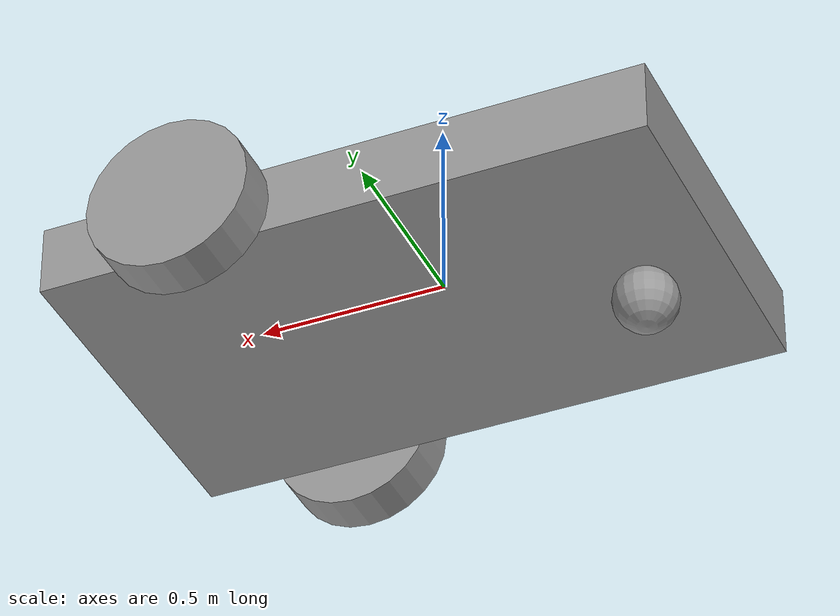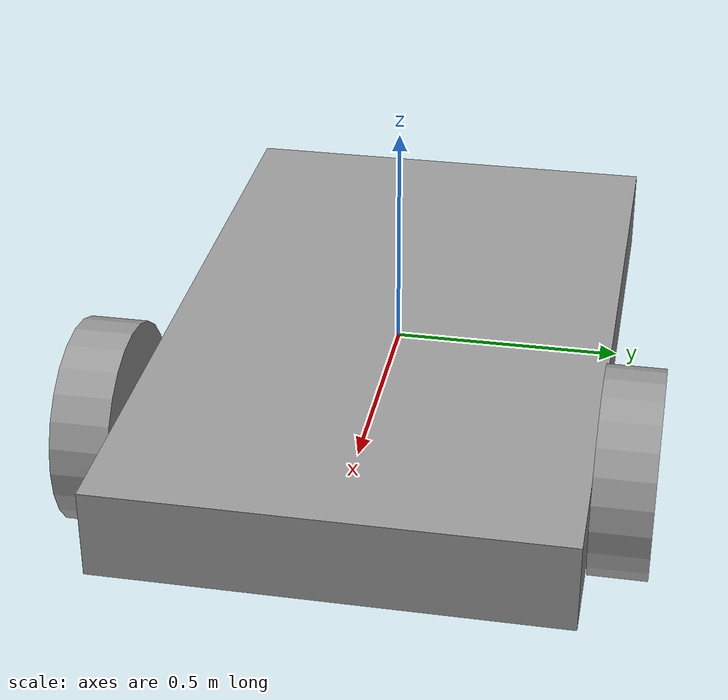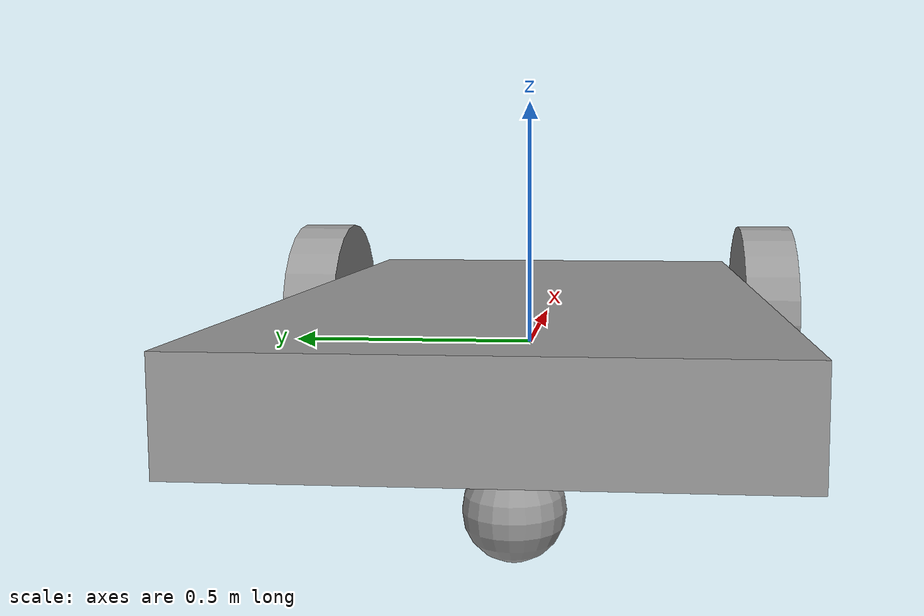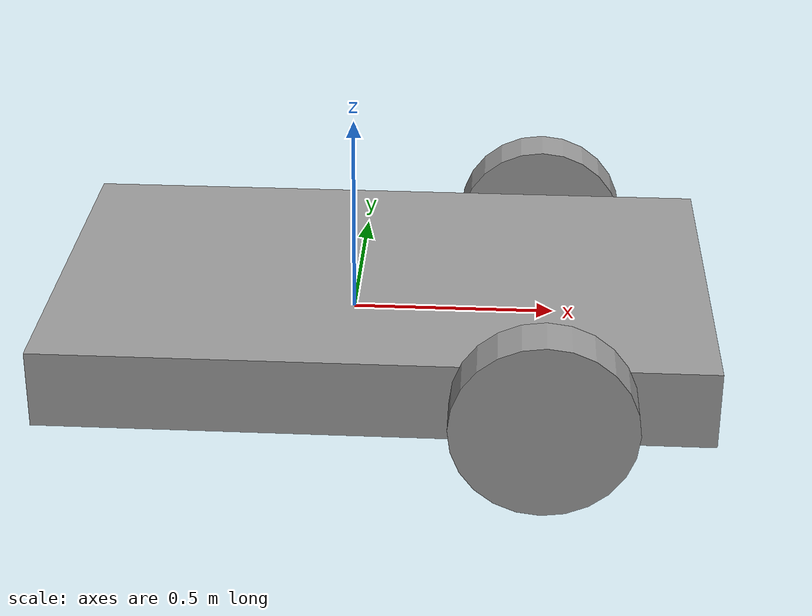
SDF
<?xml version='1.0'?>
<sdf version='1.7'>
  <model name='MyRobot'>
    <link name='link_0'>
      <inertial>
        <mass>0.301745</mass>
        <inertia>
          <ixx>0.024803</ixx>
          <ixy>0</ixy>
          <ixz>0</ixz>
          <iyy>0.0661289</iyy>
          <iyz>0</iyz>
          <izz>0.0890717</izz>
        </inertia>
        <pose>0 0 0 0 -0 0</pose>
      </inertial>
      <pose>0.071738 0.006828 0.002699 0 -0 0</pose>
      <visual name='visual'>
        <pose>0 0 0 0 -0 0</pose>
        <geometry>
          <box>
            <size>1.61024 0.97437 0.192324</size>
          </box>
        </geometry>
        <material>
          <lighting>1</lighting>
          <script>
            <uri>file://media/materials/scripts/gazebo.material</uri>
            <name>Gazebo/Grey</name>
          </script>
          <shader type='pixel'/>
          <emissive>0 0 0 1</emissive>
        </material>
        <transparency>0</transparency>
        <cast_shadows>1</cast_shadows>
      </visual>
      <collision name='collision'>
        <laser_retro>0</laser_retro>
        <max_contacts>10</max_contacts>
        <pose>0 0 0 0 -0 0</pose>
        <geometry>
          <box>
            <size>1.61024 0.97437 0.192324</size>
          </box>
        </geometry>
        <surface>
          <friction>
            <ode>
              <mu>1</mu>
              <mu2>1</mu2>
              <fdir1>0 0 0</fdir1>
              <slip1>0</slip1>
              <slip2>0</slip2>
            </ode>
            <torsional>
              <coefficient>1</coefficient>
              <patch_radius>0</patch_radius>
              <surface_radius>0</surface_radius>
              <use_patch_radius>1</use_patch_radius>
              <ode>
                <slip>0</slip>
              </ode>
            </torsional>
          </friction>
          <bounce>
            <restitution_coefficient>0</restitution_coefficient>
            <threshold>1e+06</threshold>
          </bounce>
          <contact>
            <collide_without_contact>0</collide_without_contact>
            <collide_without_contact_bitmask>1</collide_without_contact_bitmask>
            <collide_bitmask>1</collide_bitmask>
            <ode>
              <soft_cfm>0</soft_cfm>
              <soft_erp>0.2</soft_erp>
              <kp>1e+13</kp>
              <kd>1</kd>
              <max_vel>0.01</max_vel>
              <min_depth>0</min_depth>
            </ode>
            <bullet>
              <split_impulse>1</split_impulse>
              <split_impulse_penetration_threshold>-0.01</split_impulse_penetration_threshold>
              <soft_cfm>0</soft_cfm>
              <soft_erp>0.2</soft_erp>
              <kp>1e+13</kp>
              <kd>1</kd>
            </bullet>
          </contact>
        </surface>
      </collision>
    </link>
    <link name='link_1'>
      <inertial>
        <mass>0.0235599</mass>
        <inertia>
          <ixx>0.000310559</ixx>
          <ixy>0</ixy>
          <ixz>0</ixz>
          <iyy>0.000310559</iyy>
          <iyz>0</iyz>
          <izz>0.000561086</izz>
        </inertia>
        <pose>0 0 0 0 -0 0</pose>
      </inertial>
      <pose>0.471738 0.555857 0.002699 0 -0 0</pose>
      <gravity>1</gravity>
      <self_collide>0</self_collide>
      <kinematic>0</kinematic>
      <enable_wind>0</enable_wind>
      <visual name='visual'>
        <pose>0 0 0 1.5707 -0 0</pose>
        <geometry>
          <cylinder>
            <radius>0.218244</radius>
            <length>0.123646</length>
          </cylinder>
        </geometry>
        <material>
          <lighting>1</lighting>
          <script>
            <uri>file://media/materials/scripts/gazebo.material</uri>
            <name>Gazebo/Grey</name>
          </script>
          <shader type='pixel'>
            <normal_map>__default__</normal_map>
          </shader>
          <ambient>0.3 0.3 0.3 1</ambient>
          <diffuse>0.7 0.7 0.7 1</diffuse>
          <specular>0.01 0.01 0.01 1</specular>
          <emissive>0 0 0 1</emissive>
        </material>
        <transparency>0</transparency>
        <cast_shadows>1</cast_shadows>
      </visual>
      <collision name='collision'>
        <laser_retro>0</laser_retro>
        <max_contacts>10</max_contacts>
        <pose>0 0 0 1.5707 -0 0</pose>
        <geometry>
          <cylinder>
            <radius>0.218244</radius>
            <length>0.123646</length>
          </cylinder>
        </geometry>
        <surface>
          <friction>
            <ode>
              <mu>1</mu>
              <mu2>1</mu2>
              <fdir1>0 0 0</fdir1>
              <slip1>0</slip1>
              <slip2>0</slip2>
            </ode>
            <torsional>
              <coefficient>1</coefficient>
              <patch_radius>0</patch_radius>
              <surface_radius>0</surface_radius>
              <use_patch_radius>1</use_patch_radius>
              <ode>
                <slip>0</slip>
              </ode>
            </torsional>
          </friction>
          <bounce>
            <restitution_coefficient>0</restitution_coefficient>
            <threshold>1e+06</threshold>
          </bounce>
          <contact>
            <collide_without_contact>0</collide_without_contact>
            <collide_without_contact_bitmask>1</collide_without_contact_bitmask>
            <collide_bitmask>1</collide_bitmask>
            <ode>
              <soft_cfm>0</soft_cfm>
              <soft_erp>0.2</soft_erp>
              <kp>1e+13</kp>
              <kd>1</kd>
              <max_vel>0.01</max_vel>
              <min_depth>0</min_depth>
            </ode>
            <bullet>
              <split_impulse>1</split_impulse>
              <split_impulse_penetration_threshold>-0.01</split_impulse_penetration_threshold>
              <soft_cfm>0</soft_cfm>
              <soft_erp>0.2</soft_erp>
              <kp>1e+13</kp>
              <kd>1</kd>
            </bullet>
          </contact>
        </surface>
      </collision>
    </link>
    <link name='link_1_clone'>
      <inertial>
        <mass>0.0235599</mass>
        <inertia>
          <ixx>0.000310559</ixx>
          <ixy>0</ixy>
          <ixz>0</ixz>
          <iyy>0.000310559</iyy>
          <iyz>0</iyz>
          <izz>0.000561086</izz>
        </inertia>
        <pose>0 0 0 0 -0 0</pose>
      </inertial>
      <pose>0.471738 -0.542201 0.002699 0 -0 0</pose>
      <gravity>1</gravity>
      <self_collide>0</self_collide>
      <kinematic>0</kinematic>
      <enable_wind>0</enable_wind>
      <visual name='visual'>
        <pose>0 0 0 1.5707 -0 0</pose>
        <geometry>
          <cylinder>
            <radius>0.218244</radius>
            <length>0.123646</length>
          </cylinder>
        </geometry>
        <material>
          <lighting>1</lighting>
          <script>
            <uri>file://media/materials/scripts/gazebo.material</uri>
            <name>Gazebo/Grey</name>
          </script>
          <shader type='pixel'>
            <normal_map>__default__</normal_map>
          </shader>
          <ambient>0.3 0.3 0.3 1</ambient>
          <diffuse>0.7 0.7 0.7 1</diffuse>
          <specular>0.01 0.01 0.01 1</specular>
          <emissive>0 0 0 1</emissive>
        </material>
        <transparency>0</transparency>
        <cast_shadows>1</cast_shadows>
      </visual>
      <collision name='collision'>
        <laser_retro>0</laser_retro>
        <max_contacts>10</max_contacts>
        <pose>0 0 0 1.5707 -0 0</pose>
        <geometry>
          <cylinder>
            <radius>0.218244</radius>
            <length>0.123646</length>
          </cylinder>
        </geometry>
        <surface>
          <friction>
            <ode>
              <mu>1</mu>
              <mu2>1</mu2>
              <fdir1>0 0 0</fdir1>
              <slip1>0</slip1>
              <slip2>0</slip2>
            </ode>
            <torsional>
              <coefficient>1</coefficient>
              <patch_radius>0</patch_radius>
              <surface_radius>0</surface_radius>
              <use_patch_radius>1</use_patch_radius>
              <ode>
                <slip>0</slip>
              </ode>
            </torsional>
          </friction>
          <bounce>
            <restitution_coefficient>0</restitution_coefficient>
            <threshold>1e+06</threshold>
          </bounce>
          <contact>
            <collide_without_contact>0</collide_without_contact>
            <collide_without_contact_bitmask>1</collide_without_contact_bitmask>
            <collide_bitmask>1</collide_bitmask>
            <ode>
              <soft_cfm>0</soft_cfm>
              <soft_erp>0.2</soft_erp>
              <kp>1e+13</kp>
              <kd>1</kd>
              <max_vel>0.01</max_vel>
              <min_depth>0</min_depth>
            </ode>
            <bullet>
              <split_impulse>1</split_impulse>
              <split_impulse_penetration_threshold>-0.01</split_impulse_penetration_threshold>
              <soft_cfm>0</soft_cfm>
              <soft_erp>0.2</soft_erp>
              <kp>1e+13</kp>
              <kd>1</kd>
            </bullet>
          </contact>
        </surface>
      </collision>
    </link>
    <link name='link_2'>
      <inertial>
        <mass>0.00497609</mass>
        <inertia>
          <ixx>1.45044e-05</ixx>
          <ixy>0</ixy>
          <ixz>0</ixz>
          <iyy>1.45044e-05</iyy>
          <iyz>0</iyz>
          <izz>1.45044e-05</izz>
        </inertia>
        <pose>0 0 0 0 -0 0</pose>
      </inertial>
      <pose>-0.528262 -0.02049 -0.188099 0 -0 0</pose>
      <visual name='visual'>
        <pose>0 0 0 0 -0 0</pose>
        <geometry>
          <sphere>
            <radius>0.0853641</radius>
          </sphere>
        </geometry>
        <material>
          <lighting>1</lighting>
          <script>
            <uri>file://media/materials/scripts/gazebo.material</uri>
            <name>Gazebo/Grey</name>
          </script>
          <shader type='pixel'/>
          <emissive>0 0 0 1</emissive>
        </material>
        <transparency>0</transparency>
        <cast_shadows>1</cast_shadows>
      </visual>
      <collision name='collision'>
        <laser_retro>0</laser_retro>
        <max_contacts>10</max_contacts>
        <pose>0 0 0 0 -0 0</pose>
        <geometry>
          <sphere>
            <radius>0.085364</radius>
          </sphere>
        </geometry>
        <surface>
          <friction>
            <ode>
              <mu>1</mu>
              <mu2>1</mu2>
              <fdir1>0 0 0</fdir1>
              <slip1>0</slip1>
              <slip2>0</slip2>
            </ode>
            <torsional>
              <coefficient>1</coefficient>
              <patch_radius>0</patch_radius>
              <surface_radius>0</surface_radius>
              <use_patch_radius>1</use_patch_radius>
              <ode>
                <slip>0</slip>
              </ode>
            </torsional>
          </friction>
          <bounce>
            <restitution_coefficient>0</restitution_coefficient>
            <threshold>1e+06</threshold>
          </bounce>
          <contact>
            <collide_without_contact>0</collide_without_contact>
            <collide_without_contact_bitmask>1</collide_without_contact_bitmask>
            <collide_bitmask>1</collide_bitmask>
            <ode>
              <soft_cfm>0</soft_cfm>
              <soft_erp>0.2</soft_erp>
              <kp>1e+13</kp>
              <kd>1</kd>
              <max_vel>0.01</max_vel>
              <min_depth>0</min_depth>
            </ode>
            <bullet>
              <split_impulse>1</split_impulse>
              <split_impulse_penetration_threshold>-0.01</split_impulse_penetration_threshold>
              <soft_cfm>0</soft_cfm>
              <soft_erp>0.2</soft_erp>
              <kp>1e+13</kp>
              <kd>1</kd>
            </bullet>
          </contact>
        </surface>
      </collision>
    </link>
    <joint name='link_0_JOINT_0' type='revolute'>
      <parent>link_0</parent>
      <child>link_1</child>
      <pose>0 0 0 0 -0 0</pose>
      <axis>
        <xyz>1 0 0</xyz>
        <limit>
          <lower>-1.79769e+308</lower>
          <upper>1.79769e+308</upper>
          <effort>-1</effort>
          <velocity>-1</velocity>
        </limit>
        <dynamics>
          <spring_reference>0</spring_reference>
          <spring_stiffness>0</spring_stiffness>
          <damping>0</damping>
        </dynamics>
      </axis>
      <physics>
        <ode>
          <limit>
            <cfm>0</cfm>
            <erp>0.2</erp>
          </limit>
          <suspension>
            <cfm>0</cfm>
            <erp>0.2</erp>
          </suspension>
        </ode>
      </physics>
    </joint>
    <joint name='link_0_JOINT_1' type='revolute'>
      <parent>link_0</parent>
      <child>link_1_clone</child>
      <pose>0 0 0 0 -0 0</pose>
      <axis>
        <xyz>0 1 0</xyz>
        <limit>
          <lower>-1.79769e+308</lower>
          <upper>1.79769e+308</upper>
          <effort>-1</effort>
          <velocity>-1</velocity>
        </limit>
        <dynamics>
          <spring_reference>0</spring_reference>
          <spring_stiffness>0</spring_stiffness>
          <damping>0</damping>
        </dynamics>
      </axis>
      <physics>
        <ode>
          <limit>
            <cfm>0</cfm>
            <erp>0.2</erp>
          </limit>
          <suspension>
            <cfm>0</cfm>
            <erp>0.2</erp>
          </suspension>
        </ode>
      </physics>
    </joint>
    <joint name='link_0_JOINT_3' type='ball'>
      <parent>link_0</parent>
      <child>link_2</child>
      <pose>0 0 0 0 -0 0</pose>
      <physics>
        <ode>
          <limit>
            <cfm>0</cfm>
            <erp>0.2</erp>
          </limit>
          <suspension>
            <cfm>0</cfm>
            <erp>0.2</erp>
          </suspension>
        </ode>
      </physics>
    </joint>
    <static>0</static>
    <allow_auto_disable>1</allow_auto_disable>
  </model>
</sdf>
